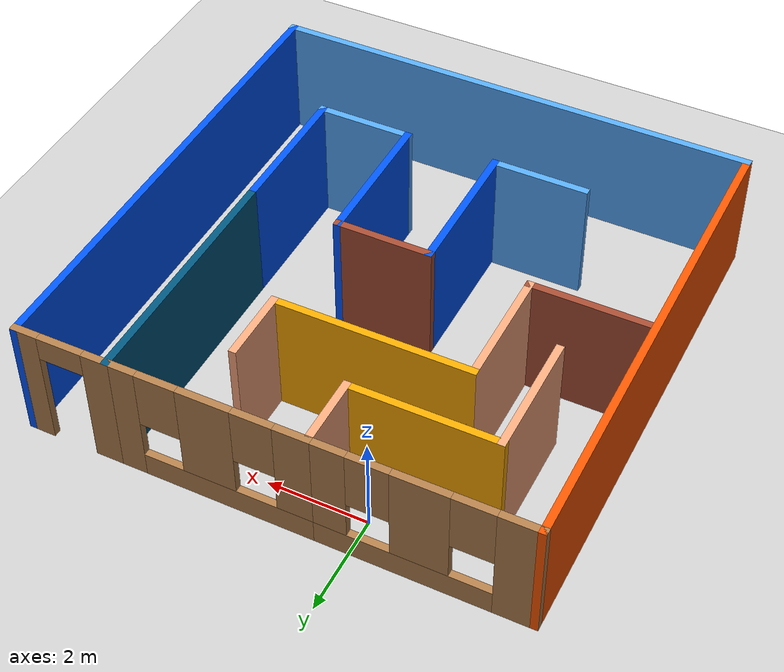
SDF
<sdf version="1.6">
 <world name="default">
  <light name="sun" type="directional">
   <pose>0 0 10 0 -0 0</pose>
   <diffuse>0.8 0.8 0.8 1</diffuse>
   <specular>0.1 0.1 0.1 1</specular>
   <attenuation>
    <range>1000</range>
    <constant>0.9</constant>
    <linear>0.01</linear>
    <quadratic>0.001</quadratic>
   </attenuation>
   <direction>-0.5 0.5 -1</direction>
  </light>
  <model name="ground_plane">
   <static>1</static>
   <link name="link">
    <collision name="collision">
     <geometry><plane><normal>0 0 1</normal><size>100 100</size></plane></geometry>
     <surface><friction><ode><mu>100</mu><mu2>50</mu2></ode></friction></surface>
    </collision>
    <visual name="visual">
     <cast_shadows>0</cast_shadows>
     <geometry><plane><normal>0 0 1</normal><size>100 100</size></plane></geometry>
     <material>
      <script><uri>file://media/materials/scripts/gazebo.material</uri><name>Gazebo/Grey</name></script>
     </material>
    </visual>
   </link>
  </model>
  <gravity>0 0 -9.8</gravity>
  <magnetic_field>6e-06 2.3e-05 -4.2e-05</magnetic_field>
  <atmosphere type="adiabatic"/>
  <physics name="default_physics" default="0" type="ode">
   <max_step_size>0.001</max_step_size>
   <real_time_factor>1</real_time_factor>
   <real_time_update_rate>1000</real_time_update_rate>
  </physics>
  <scene><ambient>0.4 0.4 0.4 1</ambient><background>0.7 0.7 0.7 1</background><shadows>1</shadows></scene>
  <spherical_coordinates>
   <surface_model>EARTH_WGS84</surface_model>
   <latitude_deg>0</latitude_deg>
   <longitude_deg>0</longitude_deg>
   <elevation>0</elevation>
   <heading_deg>0</heading_deg>
  </spherical_coordinates>
  <model name="building_M">
   <pose>1.51028 -4.242 0 0 -0 0</pose>
   <link name="Wall_35">
    <collision name="Wall_35_Collision">
     <geometry><box><size>10 0.15 2.5</size></box></geometry>
     <pose>0 0 1.25 0 -0 0</pose>
    </collision>
    <visual name="Wall_35_Visual">
     <pose>0 0 1.25 0 -0 0</pose>
     <geometry><box><size>10 0.15 2.5</size></box></geometry>
     <material>
      <script><uri>file://media/materials/scripts/gazebo.material</uri><name>Gazebo/Grey</name></script>
      <ambient>1 0.333333 0 1</ambient>
     </material>
    </visual>
    <pose>-4.925 0 0 0 0 -1.5708</pose>
   </link>
   <link name="Wall_36">
    <collision name="Wall_36_Collision">
     <geometry><box><size>10 0.15 2.5</size></box></geometry>
     <pose>0 0 1.25 0 -0 0</pose>
    </collision>
    <visual name="Wall_36_Visual">
     <pose>0 0 1.25 0 -0 0</pose>
     <geometry><box><size>10 0.15 2.5</size></box></geometry>
     <material>
      <script><uri>file://media/materials/scripts/gazebo.material</uri><name>Gazebo/Grey</name></script>
      <ambient>0.333333 0.666667 1 1</ambient>
     </material>
    </visual>
    <pose>0 -4.925 0 0 -0 0</pose>
   </link>
   <link name="Wall_37">
    <collision name="Wall_37_Collision">
     <geometry><box><size>10 0.15 2.5</size></box></geometry>
     <pose>0 0 1.25 0 -0 0</pose>
    </collision>
    <visual name="Wall_37_Visual">
     <pose>0 0 1.25 0 -0 0</pose>
     <geometry><box><size>10 0.15 2.5</size></box></geometry>
     <material>
      <script><uri>file://media/materials/scripts/gazebo.material</uri><name>Gazebo/Grey</name></script>
      <ambient>0 0.333333 1 1</ambient>
     </material>
    </visual>
    <pose>4.925 0 0 0 -0 1.5708</pose>
   </link>
   <link name="Wall_38">
    <pose>4 4.925 0 0 -0 3.14159</pose>
    <visual name="Wall_38_Visual_0">
     <pose>-0.727767 0 1.25 0 -0 0</pose>
     <geometry><box><size>0.544466 0.15 2.5</size></box></geometry>
     <material>
      <script><uri>file://media/materials/scripts/gazebo.material</uri><name>Gazebo/Wood</name></script>
      <ambient>1 1 1 1</ambient>
     </material>
    </visual>
    <collision name="Wall_38_Collision_0">
     <geometry><box><size>0.544466 0.15 2.5</size></box></geometry>
     <pose>-0.727767 0 1.25 0 -0 0</pose>
    </collision>
    <visual name="Wall_38_Visual_1">
     <pose>0.722233 0 1.25 0 -0 0</pose>
     <geometry><box><size>0.555534 0.15 2.5</size></box></geometry>
     <material>
      <script><uri>file://media/materials/scripts/gazebo.material</uri><name>Gazebo/Wood</name></script>
      <ambient>1 1 1 1</ambient>
     </material>
    </visual>
    <collision name="Wall_38_Collision_1">
     <geometry><box><size>0.555534 0.15 2.5</size></box></geometry>
     <pose>0.722233 0 1.25 0 -0 0</pose>
    </collision>
    <visual name="Wall_38_Visual_2">
     <pose>-0.005534 0 2.25 0 -0 0</pose>
     <geometry><box><size>0.9 0.15 0.5</size></box></geometry>
     <material>
      <script><uri>file://media/materials/scripts/gazebo.material</uri><name>Gazebo/Wood</name></script>
      <ambient>1 1 1 1</ambient>
     </material>
    </visual>
    <collision name="Wall_38_Collision_2">
     <geometry><box><size>0.9 0.15 0.5</size></box></geometry>
     <pose>-0.005534 0 2.25 0 -0 0</pose>
    </collision>
   </link>
   <link name="Wall_39">
    <collision name="Wall_39_Collision">
     <geometry><box><size>5 0.15 2.5</size></box></geometry>
     <pose>0 0 1.25 0 -0 0</pose>
    </collision>
    <visual name="Wall_39_Visual">
     <pose>0 0 1.25 0 -0 0</pose>
     <geometry><box><size>5 0.15 2.5</size></box></geometry>
     <material>
      <script><uri>file://media/materials/scripts/gazebo.material</uri><name>Gazebo/Grey</name></script>
      <ambient>0 0.333333 0.498039 1</ambient>
     </material>
    </visual>
    <pose>3.075 2.5 0 0 0 -1.5708</pose>
   </link>
   <link name="Wall_40">
    <collision name="Wall_40_Collision">
     <geometry><box><size>3 0.15 2.5</size></box></geometry>
     <pose>0 0 1.25 0 -0 0</pose>
    </collision>
    <visual name="Wall_40_Visual">
     <pose>0 0 1.25 0 -0 0</pose>
     <geometry><box><size>3 0.15 2.5</size></box></geometry>
     <material>
      <script><uri>file://media/materials/scripts/gazebo.material</uri><name>Gazebo/Grey</name></script>
      <ambient>0 0.333333 1 1</ambient>
     </material>
    </visual>
    <pose>3.075 -1.35 0 0 0 -1.5708</pose>
   </link>
   <link name="Wall_41">
    <collision name="Wall_41_Collision">
     <geometry><box><size>2 0.15 2.5</size></box></geometry>
     <pose>0 0 1.25 0 -0 0</pose>
    </collision>
    <visual name="Wall_41_Visual">
     <pose>0 0 1.25 0 -0 0</pose>
     <geometry><box><size>2 0.15 2.5</size></box></geometry>
     <material>
      <script><uri>file://media/materials/scripts/gazebo.material</uri><name>Gazebo/Grey</name></script>
      <ambient>0.333333 0.666667 1 1</ambient>
     </material>
    </visual>
    <pose>2.15 -2.775 0 0 -0 3.14159</pose>
   </link>
   <link name="Wall_42">
    <collision name="Wall_42_Collision">
     <geometry><box><size>3 0.15 2.5</size></box></geometry>
     <pose>0 0 1.25 0 -0 0</pose>
    </collision>
    <visual name="Wall_42_Visual">
     <pose>0 0 1.25 0 -0 0</pose>
     <geometry><box><size>3 0.15 2.5</size></box></geometry>
     <material>
      <script><uri>file://media/materials/scripts/gazebo.material</uri><name>Gazebo/Grey</name></script>
      <ambient>0 0.333333 1 1</ambient>
     </material>
    </visual>
    <pose>1.225 -1.35 0 0 -0 1.5708</pose>
   </link>
   <link name="Wall_43">
    <collision name="Wall_43_Collision">
     <geometry><box><size>2 0.15 2.5</size></box></geometry>
     <pose>0 0 1.25 0 -0 0</pose>
    </collision>
    <visual name="Wall_43_Visual">
     <pose>0 0 1.25 0 -0 0</pose>
     <geometry><box><size>2 0.15 2.5</size></box></geometry>
     <material>
      <script><uri>file://media/materials/scripts/gazebo.material</uri><name>Gazebo/Bricks</name></script>
      <ambient>1 1 1 1</ambient>
     </material>
    </visual>
    <pose>0.3 0.075 0 0 -0 3.14159</pose>
   </link>
   <link name="Wall_44">
    <collision name="Wall_44_Collision">
     <geometry><box><size>3 0.15 2.5</size></box></geometry>
     <pose>0 0 1.25 0 -0 0</pose>
    </collision>
    <visual name="Wall_44_Visual">
     <pose>0 0 1.25 0 -0 0</pose>
     <geometry><box><size>3 0.15 2.5</size></box></geometry>
     <material>
      <script><uri>file://media/materials/scripts/gazebo.material</uri><name>Gazebo/Grey</name></script>
      <ambient>0 0.333333 1 1</ambient>
     </material>
    </visual>
    <pose>-0.625 -1.35 0 0 0 -1.5708</pose>
   </link>
   <link name="Wall_47">
    <collision name="Wall_47_Collision">
     <geometry><box><size>2 0.15 2.5</size></box></geometry>
     <pose>0 0 1.25 0 -0 0</pose>
    </collision>
    <visual name="Wall_47_Visual">
     <pose>0 0 1.25 0 -0 0</pose>
     <geometry><box><size>2 0.15 2.5</size></box></geometry>
     <material>
      <script><uri>file://media/materials/scripts/gazebo.material</uri><name>Gazebo/Grey</name></script>
      <ambient>0.333333 0.666667 1 1</ambient>
     </material>
    </visual>
    <pose>-1.55 -2.775 0 0 -0 3.14159</pose>
   </link>
   <link name="Wall_50">
    <collision name="Wall_50_Collision">
     <geometry><box><size>2.5 0.15 2.5</size></box></geometry>
     <pose>0 0 1.25 0 -0 0</pose>
    </collision>
    <visual name="Wall_50_Visual">
     <pose>0 0 1.25 0 -0 0</pose>
     <geometry><box><size>2.5 0.15 2.5</size></box></geometry>
     <material>
      <script><uri>file://media/materials/scripts/gazebo.material</uri><name>Gazebo/Bricks</name></script>
      <ambient>1 1 1 1</ambient>
     </material>
    </visual>
    <pose>-3.72731 0.003978 0 0 -0 0</pose>
   </link>
   <link name="Wall_51">
    <collision name="Wall_51_Collision">
     <geometry><box><size>2.5 0.15 2.5</size></box></geometry>
     <pose>0 0 1.25 0 -0 0</pose>
    </collision>
    <visual name="Wall_51_Visual">
     <pose>0 0 1.25 0 -0 0</pose>
     <geometry><box><size>2.5 0.15 2.5</size></box></geometry>
     <material>
      <script><uri>file://media/materials/scripts/gazebo.material</uri><name>Gazebo/Grey</name></script>
      <ambient>1 0.666667 0.498039 1</ambient>
     </material>
    </visual>
    <pose>-2.55231 1.17898 0 0 -0 1.5708</pose>
   </link>
   <link name="Wall_52">
    <collision name="Wall_52_Collision">
     <geometry><box><size>4 0.15 2.5</size></box></geometry>
     <pose>0 0 1.25 0 -0 0</pose>
    </collision>
    <visual name="Wall_52_Visual">
     <pose>0 0 1.25 0 -0 0</pose>
     <geometry><box><size>4 0.15 2.5</size></box></geometry>
     <material>
      <script><uri>file://media/materials/scripts/gazebo.material</uri><name>Gazebo/Grey</name></script>
      <ambient>1 0.666667 0 1</ambient>
     </material>
    </visual>
    <pose>-0.627312 2.35398 0 0 -0 0</pose>
   </link>
   <link name="Wall_53">
    <collision name="Wall_53_Collision">
     <geometry><box><size>1.5 0.15 2.5</size></box></geometry>
     <pose>0 0 1.25 0 -0 0</pose>
    </collision>
    <visual name="Wall_53_Visual">
     <pose>0 0 1.25 0 -0 0</pose>
     <geometry><box><size>1.5 0.15 2.5</size></box></geometry>
     <material>
      <script><uri>file://media/materials/scripts/gazebo.material</uri><name>Gazebo/Grey</name></script>
      <ambient>1 0.666667 0.498039 1</ambient>
     </material>
    </visual>
    <pose>1.29769 3.02898 0 0 -0 1.5708</pose>
   </link>
   <link name="Wall_55">
    <pose>1.15 4.925 0 0 -0 3.14159</pose>
    <visual name="Wall_55_Visual_0">
     <pose>-1.67319 0 1.25 0 -0 0</pose>
     <geometry><box><size>0.653625 0.15 2.5</size></box></geometry>
     <material>
      <script><uri>file://media/materials/scripts/gazebo.material</uri><name>Gazebo/Wood</name></script>
      <ambient>1 1 1 1</ambient>
     </material>
    </visual>
    <collision name="Wall_55_Collision_0">
     <geometry><box><size>0.653625 0.15 2.5</size></box></geometry>
     <pose>-1.67319 0 1.25 0 -0 0</pose>
    </collision>
    <visual name="Wall_55_Visual_1">
     <pose>0.326812 0 0.25 0 -0 0</pose>
     <geometry><box><size>3.34638 0.15 0.5</size></box></geometry>
     <material>
      <script><uri>file://media/materials/scripts/gazebo.material</uri><name>Gazebo/Wood</name></script>
      <ambient>1 1 1 1</ambient>
     </material>
    </visual>
    <collision name="Wall_55_Collision_1">
     <geometry><box><size>3.34638 0.15 0.5</size></box></geometry>
     <pose>0.326812 0 0.25 0 -0 0</pose>
    </collision>
    <visual name="Wall_55_Visual_2">
     <pose>-0.021627 0 1.5 0 -0 0</pose>
     <geometry><box><size>1.0495 0.15 2</size></box></geometry>
     <material>
      <script><uri>file://media/materials/scripts/gazebo.material</uri><name>Gazebo/Wood</name></script>
      <ambient>1 1 1 1</ambient>
     </material>
    </visual>
    <collision name="Wall_55_Collision_2">
     <geometry><box><size>1.0495 0.15 2</size></box></geometry>
     <pose>-0.021627 0 1.5 0 -0 0</pose>
    </collision>
    <visual name="Wall_55_Visual_3">
     <pose>1.65156 0 1.5 0 -0 0</pose>
     <geometry><box><size>0.696878 0.15 2</size></box></geometry>
     <material>
      <script><uri>file://media/materials/scripts/gazebo.material</uri><name>Gazebo/Wood</name></script>
      <ambient>1 1 1 1</ambient>
     </material>
    </visual>
    <collision name="Wall_55_Collision_3">
     <geometry><box><size>0.696878 0.15 2</size></box></geometry>
     <pose>1.65156 0 1.5 0 -0 0</pose>
    </collision>
    <visual name="Wall_55_Visual_4">
     <pose>-0.946375 0 1.9 0 -0 0</pose>
     <geometry><box><size>0.8 0.15 1.2</size></box></geometry>
     <material>
      <script><uri>file://media/materials/scripts/gazebo.material</uri><name>Gazebo/Wood</name></script>
      <ambient>1 1 1 1</ambient>
     </material>
    </visual>
    <collision name="Wall_55_Collision_4">
     <geometry><box><size>0.8 0.15 1.2</size></box></geometry>
     <pose>-0.946375 0 1.9 0 -0 0</pose>
    </collision>
    <visual name="Wall_55_Visual_5">
     <pose>0.903122 0 1.9 0 -0 0</pose>
     <geometry><box><size>0.8 0.15 1.2</size></box></geometry>
     <material>
      <script><uri>file://media/materials/scripts/gazebo.material</uri><name>Gazebo/Wood</name></script>
      <ambient>1 1 1 1</ambient>
     </material>
    </visual>
    <collision name="Wall_55_Collision_5">
     <geometry><box><size>0.8 0.15 1.2</size></box></geometry>
     <pose>0.903122 0 1.9 0 -0 0</pose>
    </collision>
   </link>
   <link name="Wall_56">
    <collision name="Wall_56_Collision">
     <geometry><box><size>1.5 0.15 2.5</size></box></geometry>
     <pose>0 0 1.25 0 -0 0</pose>
    </collision>
    <visual name="Wall_56_Visual">
     <pose>0 0 1.25 0 -0 0</pose>
     <geometry><box><size>1.5 0.15 2.5</size></box></geometry>
     <material>
      <script><uri>file://media/materials/scripts/gazebo.material</uri><name>Gazebo/Grey</name></script>
      <ambient>1 0.666667 0.498039 1</ambient>
     </material>
    </visual>
    <pose>-0.774999 4.25 0 0 0 -1.5708</pose>
   </link>
   <link name="Wall_57">
    <collision name="Wall_57_Collision">
     <geometry><box><size>3 0.15 2.5</size></box></geometry>
     <pose>0 0 1.25 0 -0 0</pose>
    </collision>
    <visual name="Wall_57_Visual">
     <pose>0 0 1.25 0 -0 0</pose>
     <geometry><box><size>3 0.15 2.5</size></box></geometry>
     <material>
      <script><uri>file://media/materials/scripts/gazebo.material</uri><name>Gazebo/Grey</name></script>
      <ambient>1 0.666667 0 1</ambient>
     </material>
    </visual>
    <pose>-2.2 3.575 0 0 -0 3.14159</pose>
   </link>
   <link name="Wall_58">
    <collision name="Wall_58_Collision">
     <geometry><box><size>2.5 0.15 2.5</size></box></geometry>
     <pose>0 0 1.25 0 -0 0</pose>
    </collision>
    <visual name="Wall_58_Visual">
     <pose>0 0 1.25 0 -0 0</pose>
     <geometry><box><size>2.5 0.15 2.5</size></box></geometry>
     <material>
      <script><uri>file://media/materials/scripts/gazebo.material</uri><name>Gazebo/Grey</name></script>
      <ambient>1 0.666667 0.498039 1</ambient>
     </material>
    </visual>
    <pose>-3.625 2.4 0 0 0 -1.5708</pose>
   </link>
   <link name="Wall_60">
    <pose>-2.85 4.925 0 0 -0 0</pose>
    <visual name="Wall_60_Visual_0">
     <pose>-1.73267 0 1.25 0 -0 0</pose>
     <geometry><box><size>0.834662 0.15 2.5</size></box></geometry>
     <material>
      <script><uri>file://media/materials/scripts/gazebo.material</uri><name>Gazebo/Wood</name></script>
      <ambient>1 1 1 1</ambient>
     </material>
    </visual>
    <collision name="Wall_60_Collision_0">
     <geometry><box><size>0.834662 0.15 2.5</size></box></geometry>
     <pose>-1.73267 0 1.25 0 -0 0</pose>
    </collision>
    <visual name="Wall_60_Visual_1">
     <pose>0.417331 0 0.25 0 -0 0</pose>
     <geometry><box><size>3.46534 0.15 0.5</size></box></geometry>
     <material>
      <script><uri>file://media/materials/scripts/gazebo.material</uri><name>Gazebo/Wood</name></script>
      <ambient>1 1 1 1</ambient>
     </material>
    </visual>
    <collision name="Wall_60_Collision_1">
     <geometry><box><size>3.46534 0.15 0.5</size></box></geometry>
     <pose>0.417331 0 0.25 0 -0 0</pose>
    </collision>
    <visual name="Wall_60_Visual_2">
     <pose>0.024326 0 1.5 0 -0 0</pose>
     <geometry><box><size>1.07933 0.15 2</size></box></geometry>
     <material>
      <script><uri>file://media/materials/scripts/gazebo.material</uri><name>Gazebo/Wood</name></script>
      <ambient>1 1 1 1</ambient>
     </material>
    </visual>
    <collision name="Wall_60_Collision_2">
     <geometry><box><size>1.07933 0.15 2</size></box></geometry>
     <pose>0.024326 0 1.5 0 -0 0</pose>
    </collision>
    <visual name="Wall_60_Visual_3">
     <pose>1.757 0 1.5 0 -0 0</pose>
     <geometry><box><size>0.78601 0.15 2</size></box></geometry>
     <material>
      <script><uri>file://media/materials/scripts/gazebo.material</uri><name>Gazebo/Wood</name></script>
      <ambient>1 1 1 1</ambient>
     </material>
    </visual>
    <collision name="Wall_60_Collision_3">
     <geometry><box><size>0.78601 0.15 2</size></box></geometry>
     <pose>1.757 0 1.5 0 -0 0</pose>
    </collision>
    <visual name="Wall_60_Visual_4">
     <pose>-0.915338 0 1.9 0 -0 0</pose>
     <geometry><box><size>0.8 0.15 1.2</size></box></geometry>
     <material>
      <script><uri>file://media/materials/scripts/gazebo.material</uri><name>Gazebo/Wood</name></script>
      <ambient>1 1 1 1</ambient>
     </material>
    </visual>
    <collision name="Wall_60_Collision_4">
     <geometry><box><size>0.8 0.15 1.2</size></box></geometry>
     <pose>-0.915338 0 1.9 0 -0 0</pose>
    </collision>
    <visual name="Wall_60_Visual_5">
     <pose>0.96399 0 1.9 0 -0 0</pose>
     <geometry><box><size>0.8 0.15 1.2</size></box></geometry>
     <material>
      <script><uri>file://media/materials/scripts/gazebo.material</uri><name>Gazebo/Wood</name></script>
      <ambient>1 1 1 1</ambient>
     </material>
    </visual>
    <collision name="Wall_60_Collision_5">
     <geometry><box><size>0.8 0.15 1.2</size></box></geometry>
     <pose>0.96399 0 1.9 0 -0 0</pose>
    </collision>
   </link>
   <static>1</static>
  </model>
 </world>
</sdf>
